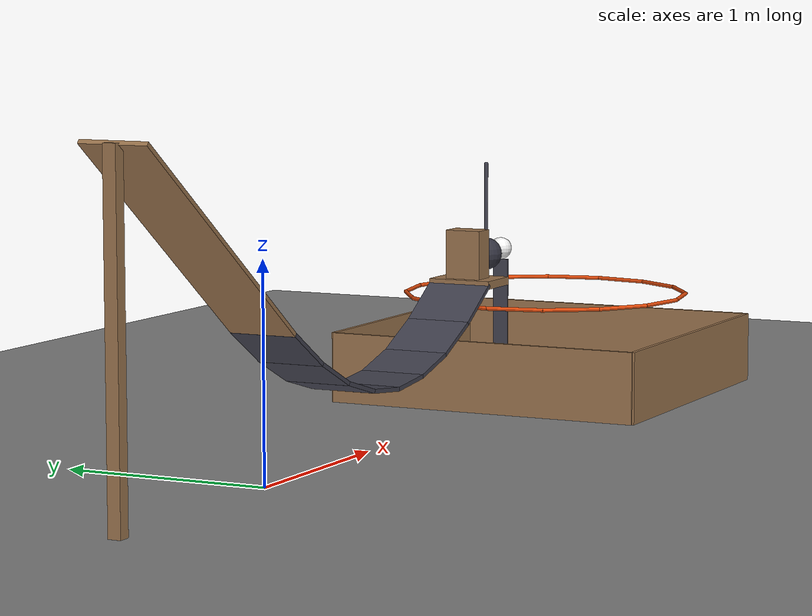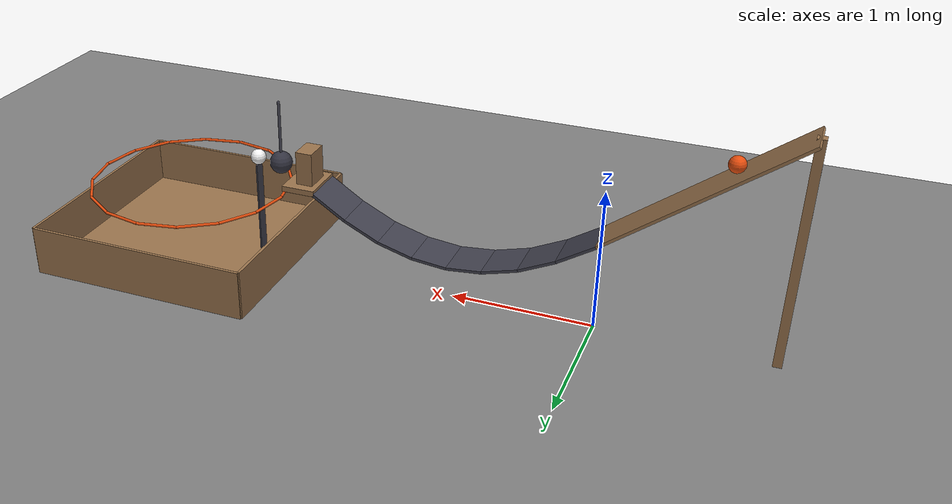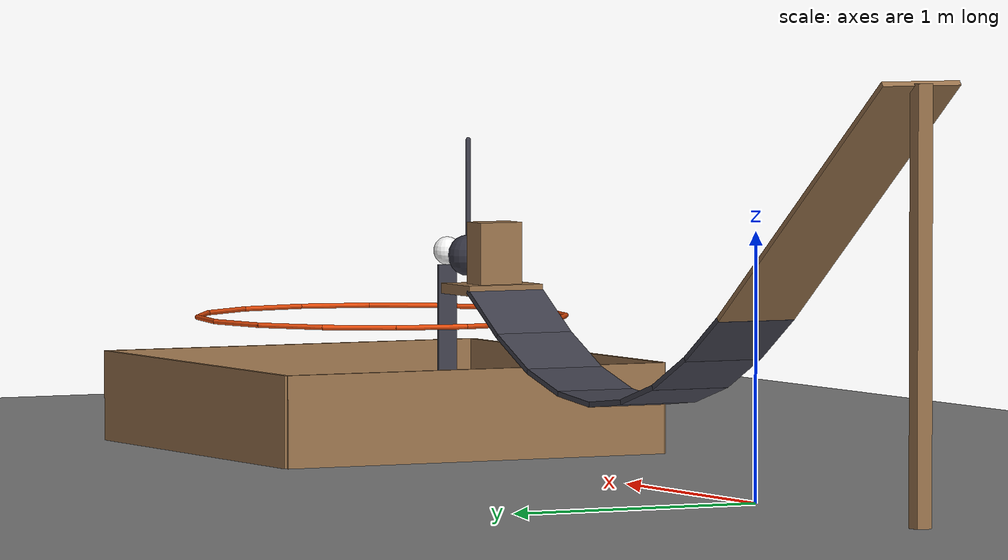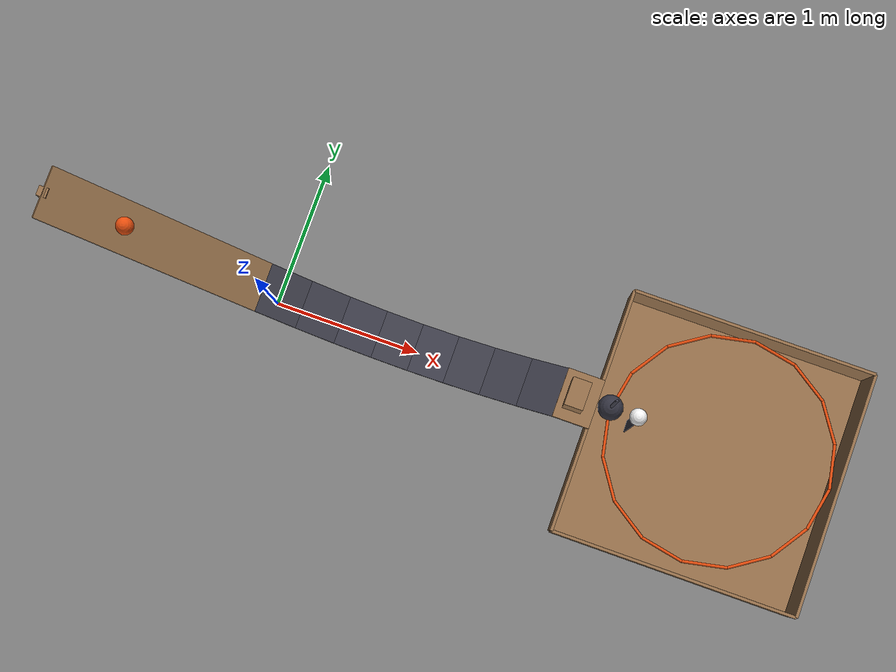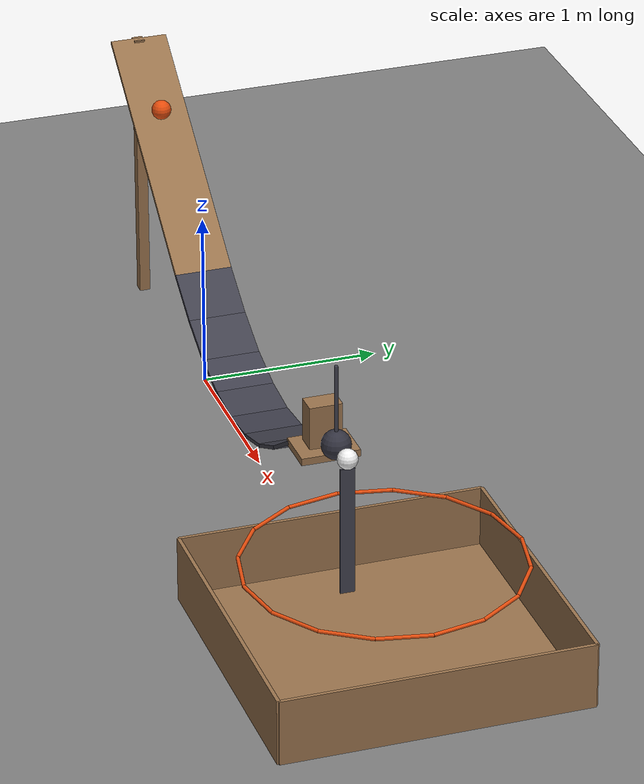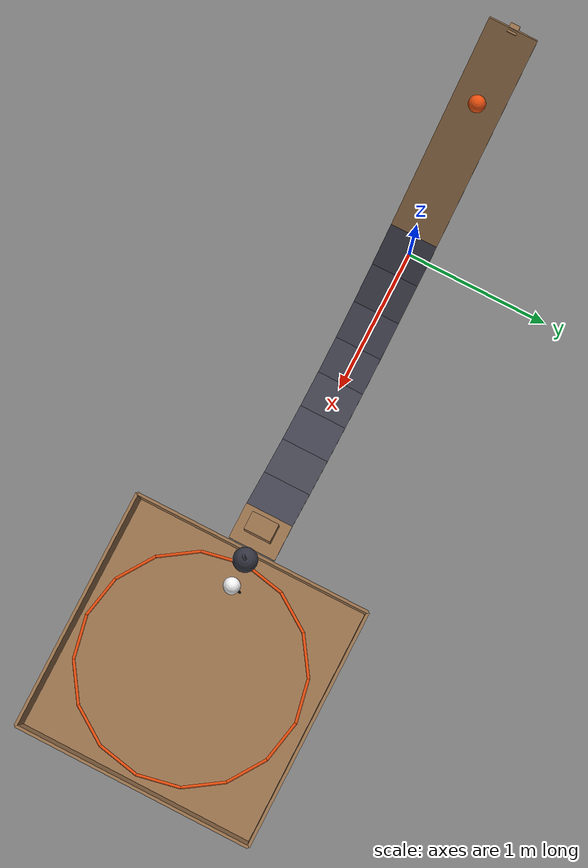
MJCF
<mujoco model="halfpipe_pendulum_drop">
  <compiler angle="radian"/>
  <option timestep="0.002"/>
  <worldbody>
    <geom name="floor" type="plane" size="10 10 0.1" friction="0.8 0.01 0.005"/>
    <body name="ramp">
      <geom name="ramp_deck" type="box" pos="-0.6 0 1.13" size="0.75 0.16 0.01" euler="0 0.643501 0" friction="0.5 0.001 0.0002" solref="0.01 1" rgba="0.6 0.45 0.3 1"/>
      <geom name="ramp_leg" type="box" pos="-1.2 0 0.79" size="0.03 0.03 0.79" friction="0.5 0.001 0.0002" solref="0.01 1" rgba="0.6 0.45 0.3 1"/>
    </body>
    <body name="halfpipe">
      <geom name="halfpipe_descending_one" type="box" pos="0.125 0 0.6" size="0.148408 0.16 0.01" euler="0 0.569313 0" friction="0.5 0.001 0.0002" solref="0.01 1" rgba="0.25 0.25 0.3 1"/>
      <geom name="halfpipe_descending_two" type="box" pos="0.375 0 0.46" size="0.138654 0.16 0.01" euler="0 0.44752 0" friction="0.5 0.001 0.0002" solref="0.01 1" rgba="0.25 0.25 0.3 1"/>
      <geom name="halfpipe_descending_three" type="box" pos="0.625 0 0.365" size="0.129808 0.16 0.01" euler="0 0.273009 0" friction="0.5 0.001 0.0002" solref="0.01 1" rgba="0.25 0.25 0.3 1"/>
      <geom name="halfpipe_descending_four" type="box" pos="0.875 0 0.3175" size="0.125623 0.16 0.01" euler="0 0.0996687 0" friction="0.5 0.001 0.0002" solref="0.01 1" rgba="0.25 0.25 0.3 1"/>
      <geom name="halfpipe_ascending_one" type="box" pos="1.125 0 0.3175" size="0.125623 0.16 0.01" euler="0 -0.0996687 0" friction="0.5 0.001 0.0002" solref="0.01 1" rgba="0.25 0.25 0.3 1"/>
      <geom name="halfpipe_ascending_two" type="box" pos="1.375 0 0.365" size="0.129808 0.16 0.01" euler="0 -0.273009 0" friction="0.5 0.001 0.0002" solref="0.01 1" rgba="0.25 0.25 0.3 1"/>
      <geom name="halfpipe_ascending_three" type="box" pos="1.625 0 0.46" size="0.138654 0.16 0.01" euler="0 -0.44752 0" friction="0.5 0.001 0.0002" solref="0.01 1" rgba="0.25 0.25 0.3 1"/>
      <geom name="halfpipe_ascending_four" type="box" pos="1.875 0 0.6" size="0.148408 0.16 0.01" euler="0 -0.569313 0" friction="0.5 0.001 0.0002" solref="0.01 1" rgba="0.25 0.25 0.3 1"/>
    </body>
    <body name="ball1" pos="-0.761 0 1.332">
      <freejoint/>
      <geom name="ball1" type="sphere" pos="0 0 0" size="0.055" mass="0.4" condim="6" friction="0.5 0.001 0.0002" solref="0.01 1" rgba="0.9 0.3 0.05 1"/>
    </body>
    <body name="striker shelf">
      <geom name="striker shelf" type="box" pos="2.1 0 0.68" size="0.12 0.16 0.02" friction="0.03 0.0001 0.0001" solref="0.01 1" rgba="0.6 0.45 0.3 1"/>
    </body>
    <body name="block" pos="2.08 0 0.82">
      <freejoint/>
      <geom name="block" type="box" pos="0 0 0" size="0.06 0.09 0.12" mass="0.12" friction="0.06 0.0001 0.0001" solref="0.01 1" rgba="0.6 0.45 0.3 1"/>
    </body>
    <body name="pendulum" pos="2.3 0 1.25">
      <joint name="final_striker_hinge" type="hinge" pos="0 0 0" axis="0 1 0" limited="true" range="-1.0472 0.174533" damping="0.003"/>
      <geom name="pendulum" type="sphere" pos="0 0 -0.45" size="0.08" mass="0.18" friction="0.1 0.0001 0.0001" solref="0.01 1" rgba="0.2 0.2 0.25 1"/>
      <geom name="pendulum rod" type="capsule" size="0.01" fromto="0 0 0 0 0 -0.37" mass="0.015" rgba="0.25 0.25 0.3 1"/>
    </body>
    <body name="ball2 perch">
      <geom name="ball2 perch" type="box" pos="2.48 0 0.3775" size="0.005 0.04 0.3775" friction="0.03 0.0001 5e-05" solref="0.01 1" rgba="0.25 0.25 0.3 1"/>
    </body>
    <body name="ball2" pos="2.48 0 0.81">
      <freejoint/>
      <geom name="ball2" type="sphere" pos="0 0 0" size="0.055" mass="0.08" condim="6" friction="0.1 0.0001 5e-05" solref="0.01 1" rgba="0.95 0.95 0.95 1"/>
    </body>
    <body name="hoop">
      <geom name="hoop_00" type="capsule" size="0.01" fromto="3.785 0 0.52 3.72905 0.281272 0.52" solref="0.01 1" rgba="0.9 0.3 0.05 1"/>
      <geom name="hoop_01" type="capsule" size="0.01" fromto="3.72905 0.281272 0.52 3.56972 0.519723 0.52" solref="0.01 1" rgba="0.9 0.3 0.05 1"/>
      <geom name="hoop_02" type="capsule" size="0.01" fromto="3.56972 0.519723 0.52 3.33127 0.679051 0.52" solref="0.01 1" rgba="0.9 0.3 0.05 1"/>
      <geom name="hoop_03" type="capsule" size="0.01" fromto="3.33127 0.679051 0.52 3.05 0.735 0.52" solref="0.01 1" rgba="0.9 0.3 0.05 1"/>
      <geom name="hoop_04" type="capsule" size="0.01" fromto="3.05 0.735 0.52 2.76873 0.679051 0.52" solref="0.01 1" rgba="0.9 0.3 0.05 1"/>
      <geom name="hoop_05" type="capsule" size="0.01" fromto="2.76873 0.679051 0.52 2.53028 0.519723 0.52" solref="0.01 1" rgba="0.9 0.3 0.05 1"/>
      <geom name="hoop_06" type="capsule" size="0.01" fromto="2.53028 0.519723 0.52 2.37095 0.281272 0.52" solref="0.01 1" rgba="0.9 0.3 0.05 1"/>
      <geom name="hoop_07" type="capsule" size="0.01" fromto="2.37095 0.281272 0.52 2.315 9.00115e-17 0.52" solref="0.01 1" rgba="0.9 0.3 0.05 1"/>
      <geom name="hoop_08" type="capsule" size="0.01" fromto="2.315 9.00115e-17 0.52 2.37095 -0.281272 0.52" solref="0.01 1" rgba="0.9 0.3 0.05 1"/>
      <geom name="hoop_09" type="capsule" size="0.01" fromto="2.37095 -0.281272 0.52 2.53028 -0.519723 0.52" solref="0.01 1" rgba="0.9 0.3 0.05 1"/>
      <geom name="hoop_10" type="capsule" size="0.01" fromto="2.53028 -0.519723 0.52 2.76873 -0.679051 0.52" solref="0.01 1" rgba="0.9 0.3 0.05 1"/>
      <geom name="hoop_11" type="capsule" size="0.01" fromto="2.76873 -0.679051 0.52 3.05 -0.735 0.52" solref="0.01 1" rgba="0.9 0.3 0.05 1"/>
      <geom name="hoop_12" type="capsule" size="0.01" fromto="3.05 -0.735 0.52 3.33127 -0.679051 0.52" solref="0.01 1" rgba="0.9 0.3 0.05 1"/>
      <geom name="hoop_13" type="capsule" size="0.01" fromto="3.33127 -0.679051 0.52 3.56972 -0.519723 0.52" solref="0.01 1" rgba="0.9 0.3 0.05 1"/>
      <geom name="hoop_14" type="capsule" size="0.01" fromto="3.56972 -0.519723 0.52 3.72905 -0.281272 0.52" solref="0.01 1" rgba="0.9 0.3 0.05 1"/>
      <geom name="hoop_15" type="capsule" size="0.01" fromto="3.72905 -0.281272 0.52 3.785 -1.80023e-16 0.52" solref="0.01 1" rgba="0.9 0.3 0.05 1"/>
    </body>
    <body name="cup">
      <geom name="cup_base" type="box" pos="3.05 0 0.0125" size="0.825 0.825 0.0125" friction="0.9 0.015 0.01" solref="0.01 1" rgba="0.6 0.45 0.3 1"/>
      <geom name="cup_near_wall" type="box" pos="2.225 0 0.18" size="0.01 0.825 0.18" friction="0.9 0.015 0.01" solref="0.01 1" rgba="0.6 0.45 0.3 1"/>
      <geom name="cup_far_wall" type="box" pos="3.875 0 0.18" size="0.01 0.825 0.18" friction="0.9 0.015 0.01" solref="0.01 1" rgba="0.6 0.45 0.3 1"/>
      <geom name="cup_left_wall" type="box" pos="3.05 0.825 0.18" size="0.825 0.01 0.18" friction="0.9 0.015 0.01" solref="0.01 1" rgba="0.6 0.45 0.3 1"/>
      <geom name="cup_right_wall" type="box" pos="3.05 -0.825 0.18" size="0.825 0.01 0.18" friction="0.9 0.015 0.01" solref="0.01 1" rgba="0.6 0.45 0.3 1"/>
    </body>
  </worldbody>
  <keyframe>
    <key name="start" qpos="-0.761 0 1.332 1 0 0 0 2.08 0 0.82 1 0 0 0 0 2.48 0 0.81 1 0 0 0" qvel="0 0 0 0 0 0 0 0 0 0 0 0 0 0 0 0 0 0 0"/>
  </keyframe>
</mujoco>
